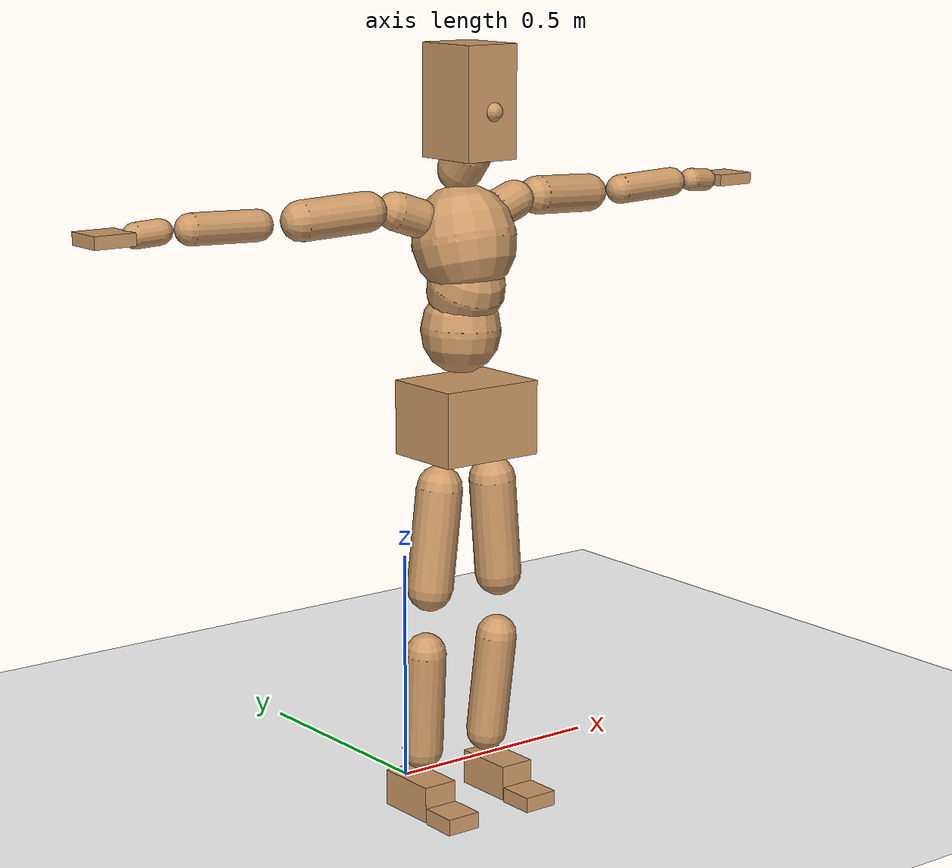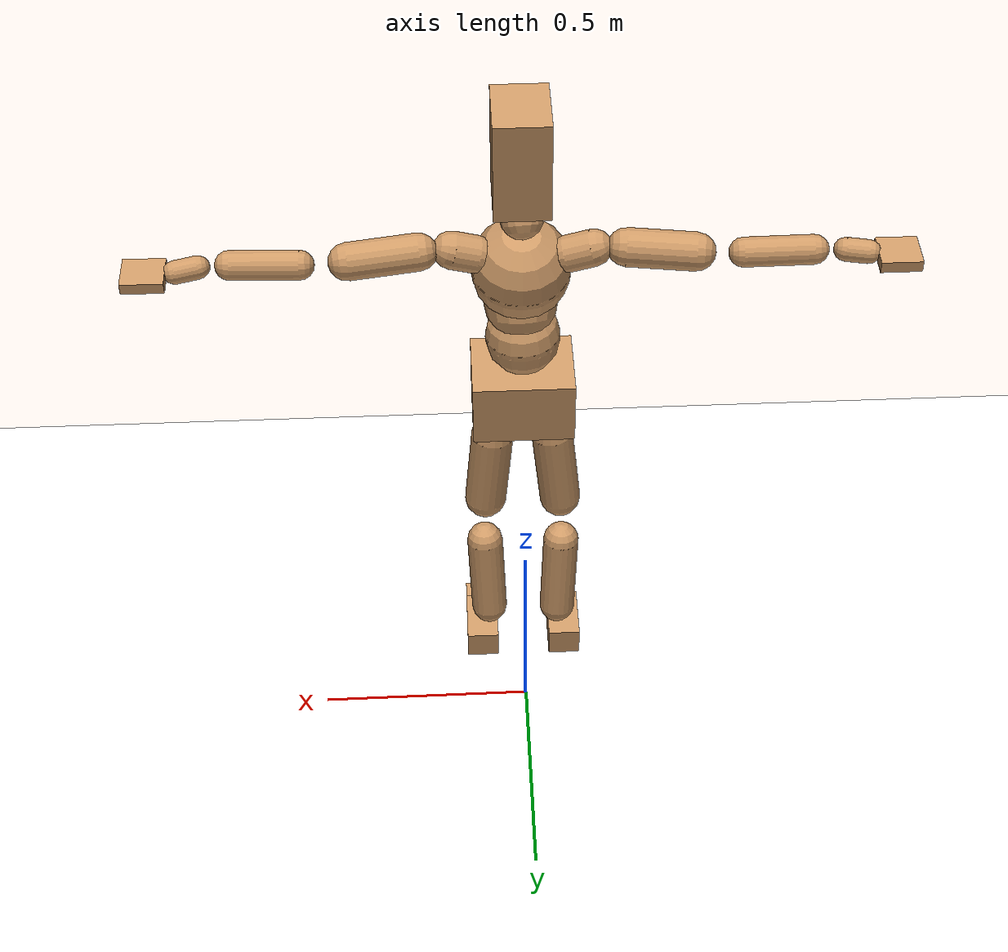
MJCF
<mujoco model="humanoid">
  <option integrator="implicitfast" />

  <visual>
    <global offwidth="1280" offheight="960" />
    <headlight active="1" ambient="0.34 0.34 0.34" diffuse="0.5 0.5 0.5" />
  </visual>

  <default>
    <joint damping="2" stiffness="2" armature="0.01" limited="true" solimplimit="0 .99 .01" />
    <geom condim="1" friction="0.7 0.005 0.0001" solimp=".99 .99 .003" solref="0.015 1" margin="0.001" rgba="0.8 0.6 .4 1" />
    <default class="smplcontact">
      <geom condim="3" friction="1. 0.005 0.0001" solref="0.015 1" solimp="0.98 0.98 0.001" priority="1" />
    </default>
    <default class="stiff_medium">
      <joint stiffness="10" />
    </default>
    <default class="stiff_medium_higher">
      <joint stiffness="50" />
    </default>
    <default class="stiff_high">
      <joint stiffness="100" />
    </default>
  </default>

  <asset>
    <texture type="skybox" builtin="gradient" rgb1="0.99 0.99 0.99" rgb2="0.608 0.828 0.892" width="100" />
    <texture builtin="flat" height="1278" mark="cross" markrgb="1 1 1" name="texgeom" random="0.01" rgb1="0.8 0.6 0.4" rgb2="0.8 0.6 0.4" type="cube" width="127" />
    <texture name="texplane" type="2d" builtin="checker" markrgb="1 1 1" rgb1="0.756 0.772 0.76" rgb2="0.6 0.6 0.6" width="100" height="100" />
    <material name="MatPlane" reflectance="0.5" texture="texplane" texrepeat="1 1" texuniform="true" />
    <material name="geom" texture="texgeom" texuniform="true" />
  </asset>

  <worldbody>
    <light name="tracking_light" pos="0 0 7" dir="0 0 -1" directional="true" cutoff="100" exponent="1" diffuse="1 1 1" specular="0.1 0.1 0.1" mode="trackcom" />
    <camera name="back" pos="0 3 2.4" xyaxes="-1 0 0 0 -1 2" mode="trackcom" />
    <camera name="side" pos="-3 0 2.4" xyaxes="0 -1 0 1 0 2" mode="trackcom" />
    <camera name="front_side" pos="-2.8 -2.8 0.8" xyaxes="0.5 -0.5 0 0.1 0.1 1" mode="trackcom" />
    <geom condim="3" name="floor" pos="0 0 0" rgba="1 1 1 1" size="100 100 .2" type="plane" material="MatPlane" />
    <body name="Pelvis" pos="-0.0018 -0.2233 0.859172" euler="90 0 0">
      <site name="Pelvis" size="0.01" />
      <freejoint name="Pelvis" />
      <geom type="box" pos="-0.0000 -0.0121 -0.0055" size="0.115452 0.077976 0.08964" quat="1.0000 0.0000 0.0000 0.0000" density="3165.830099" name="Pelvis" />
      <body name="L_Hip" pos="0.06394 -0.084088 -0.006256">
        <joint name="L_Hip_x" type="hinge" pos="0 0 0" axis="1 0 0" stiffness="5.182397083333333" range="-160.0 22.92" class="stiff_medium" damping="7.386066513989476" armature="0.0046785709968953735"/>
        <joint name="L_Hip_y" type="hinge" pos="0 0 0" axis="0 1 0" stiffness="5.170319895833333" range="-70.0 70.0" class="stiff_medium" damping="4.5595986159551645" armature="0.004021016099095626"/>
        <joint name="L_Hip_z" type="hinge" pos="0 0 0" axis="0 0 1" stiffness="5.169424895833333" range="-28.65 90.0" class="stiff_medium" damping="4.91838301884267" armature="0.00467953244461255"/>
        <geom type="capsule" density="2040.816327" fromto="0.006348 -0.069 -0.000828 0.025208 -0.276184 -0.003312" size="0.0492" name="L_Hip" />
        <body name="L_Knee" pos="0.031556 -0.345184 -0.00414">
          <joint name="L_Knee_x" type="hinge" pos="0 0 0" axis="1 0 0" range="-5.16 171.89" damping="3.85615330651496" armature="0.004552983833383062" stiffness="1.0206162916666668"/>
          <joint name="L_Knee_y" type="hinge" pos="0 0 0" axis="0 1 0" range="-4.58 6.88" damping="3.59046673980505" armature="0.0039125654569158504" stiffness="1.0296514166666666"/>
          <joint name="L_Knee_z" type="hinge" pos="0 0 0" axis="0 0 1" range="-6.88 4.58" damping="3.849807481012026" armature="0.004557491308619139" stiffness="1.0162538333333333"/>
          <geom type="capsule" density="1234.567901" fromto="-0.002484 -0.073232 -0.008004 -0.010028 -0.292928 -0.0322" size="0.04328" name="L_Knee" />
          <body name="L_Ankle" pos="-0.012512 -0.36616 -0.040204">
            <joint name="L_Ankle_x" type="hinge" pos="0 0 0" axis="1 0 0" range="-45.84 45.84" class="stiff_medium" damping="2.59523972314138" armature="0.003971866756167763" stiffness="4.7104"/>
            <joint name="L_Ankle_y" type="hinge" pos="0 0 0" axis="0 1 0" range="-74.48 22.92" class="stiff_medium" damping="1.2933890219489734" armature="0.003946008742117022" stiffness="4.7104"/>
            <joint name="L_Ankle_z" type="hinge" pos="0 0 0" axis="0 0 1" range="-4.58 4.58" class="stiff_medium" damping="2.530684060514597" armature="0.0037767268020070534" stiffness="4.7104"/>
            <geom type="box" pos="0.021436 -0.021988 0.022264" size="0.03864 0.03712 0.068" quat="1.0000 0.0000 0.0000 0.0000" density="449.071558" name="L_Ankle" class="smplcontact" />
            <body name="L_Toe" pos="0.024288 -0.051336 0.109756">
              <joint name="L_Toe_x" type="hinge" pos="0 0 0" axis="1 0 0" range="-91.67 22.92" armature="0.0036785704187839896" damping="0.8325271911629097" stiffness="0.9420799999999999"/>
              <joint name="L_Toe_y" type="hinge" pos="0 0 0" axis="0 1 0" range="-4.58 4.58" armature="0.003559879695189416" damping="0.8189861370309078" stiffness="0.9420799999999999"/>
              <joint name="L_Toe_z" type="hinge" pos="0 0 0" axis="0 0 1" range="-4.58 4.58" armature="0.003319893440580437" damping="0.7908988826015646" stiffness="0.9420799999999999"/>
              <geom type="box" pos="-0.00276 0.00506 0.022816" size="0.03824 0.016 0.03968" quat="1.0000 0.0000 0.0000 0.0000" density="423.206892" name="L_Toe" class="smplcontact" />
            </body>
          </body>
        </body>
      </body>
      <body name="R_Hip" pos="-0.062284 -0.08326 -0.003956">
        <joint name="R_Hip_x" type="hinge" pos="0 0 0" axis="1 0 0" stiffness="5.182397083333333" range="-160.0 22.92" class="stiff_medium" damping="7.386066513989476" armature="0.0046785709968953735"/>
        <joint name="R_Hip_y" type="hinge" pos="0 0 0" axis="0 1 0" stiffness="5.170319895833333" range="-70.0 70.0" class="stiff_medium" damping="4.5595986159551645" armature="0.004021016099095626"/>
        <joint name="R_Hip_z" type="hinge" pos="0 0 0" axis="0 0 1" stiffness="5.169424895833333" range="-90.0 28.65" class="stiff_medium" damping="4.91838301884267" armature="0.00467953244461255"/>
        <geom type="capsule" density="2040.816327" fromto="-0.007084 -0.07038 -0.001656 -0.028152 -0.281612 -0.006532" size="0.04848" name="R_Hip" />
        <body name="R_Knee" pos="-0.035236 -0.351992 -0.008188">
          <joint name="R_Knee_x" type="hinge" pos="0 0 0" axis="1 0 0" range="-5.16 171.89" damping="3.85615330651496" armature="0.004552983833383062" stiffness="1.0206162916666668"/>
          <joint name="R_Knee_y" type="hinge" pos="0 0 0" axis="0 1 0" range="-6.88 4.58" damping="3.59046673980505" armature="0.0039125654569158504" stiffness="1.0296514166666666"/>
          <joint name="R_Knee_z" type="hinge" pos="0 0 0" axis="0 0 1" range="-4.58 6.88" damping="3.849807481012026" armature="0.004557491308619139" stiffness="1.0162538333333333"/>
          <geom type="capsule" density="1234.567901" fromto="0.002944 -0.073324 -0.00782 0.011592 -0.293204 -0.031096" size="0.04328" name="R_Knee" />
          <body name="R_Ankle" pos="0.014536 -0.366528 -0.038916">
            <joint name="R_Ankle_x" type="hinge" pos="0 0 0" axis="1 0 0" range="-45.84 45.84" class="stiff_medium" damping="2.59523972314138" armature="0.003971866756167763" stiffness="4.7104"/>
            <joint name="R_Ankle_y" type="hinge" pos="0 0 0" axis="0 1 0" range="-22.92 74.48" class="stiff_medium" damping="1.2933890219489734" armature="0.003946008742117022" stiffness="4.7104"/>
            <joint name="R_Ankle_z" type="hinge" pos="0 0 0" axis="0 0 1" range="-4.58 4.58" class="stiff_medium" damping="2.530684060514597" armature="0.0037767268020070534" stiffness="4.7104"/>
            <geom type="box" pos="-0.019504 -0.016008 0.023552" size="0.03864 0.03824 0.0692" quat="1.0000 0.0000 0.0000 0.0000" density="434.700981" name="R_Ankle" class="smplcontact" />
            <body name="R_Toe" pos="-0.023368 -0.044252 0.113436">
              <joint name="R_Toe_x" type="hinge" pos="0 0 0" axis="1 0 0" range="-91.67 22.92" armature="0.0036785704187839896" damping="0.8325271911629097" stiffness="0.9420799999999999"/>
              <joint name="R_Toe_y" type="hinge" pos="0 0 0" axis="0 1 0" range="-4.58 4.58" armature="0.003559879695189416" damping="0.8189861370309078" stiffness="0.9420799999999999"/>
              <joint name="R_Toe_z" type="hinge" pos="0 0 0" axis="0 0 1" range="-4.58 4.58" armature="0.003319893440580437" damping="0.7908988826015646" stiffness="0.9420799999999999"/>
              <geom type="box" pos="0.003864 0.00414 0.020884" size="0.03832 0.01728 0.03944" quat="1.0000 0.0000 0.0000 0.0000" density="407.384095" name="R_Toe" class="smplcontact" />
            </body>
          </body>
        </body>
      </body>
      <body name="Torso" pos="-0.002375 0.10355 -0.025365">
        <joint name="Torso_x" type="hinge" pos="0 0 0" axis="1 0 0" range="-25.78 57.3" class="stiff_medium" damping="13.298534955218738" armature="0.008606937621747204" stiffness="9.13222125"/>
        <joint name="Torso_y" type="hinge" pos="0 0 0" axis="0 1 0" range="-57.3 57.3" class="stiff_high" damping="14.216075993966706" armature="0.00546649931202179" stiffness="92.42515416666667"/>
        <joint name="Torso_z" type="hinge" pos="0 0 0" axis="0 0 1" range="-34.38 34.38" class="stiff_high" damping="16.757867129717987" armature="0.007467817198768142" stiffness="94.01211333333333"/>
        <geom type="capsule" density="2040.816327" fromto="0.002375 0.05776 0.000475 0.00285 0.070585 0.00057" size="0.083052" name="Torso" />
        <body name="Spine" pos="0.005225 0.12844 0.001045">
          <joint name="Spine_x" type="hinge" pos="0 0 0" axis="1 0 0" stiffness="8.87020125" range="-25.78 57.3" class="stiff_medium" damping="13.192331693568567" armature="0.008720213798888786"/>
          <joint name="Spine_y" type="hinge" pos="0 0 0" axis="0 1 0" stiffness="9.04484434782609" range="-57.3 57.3" class="stiff_high" damping="5.594114018515697" armature="0.005406068648184387"/>
          <joint name="Spine_z" type="hinge" pos="0 0 0" axis="0 0 1" stiffness="17.84916772727273" range="-34.38 34.38" class="stiff_high" damping="9.34711545464215" armature="0.006798369215099382"/>
          <geom type="capsule" density="2040.816327" fromto="0.000665 0.02261 0.01083 0.00076 0.027645 0.0133" size="0.08154" name="Spine" />
          <body name="Chest" pos="0.001425 0.050255 0.02413">
            <joint name="Chest_x" type="hinge" pos="0 0 0" axis="1 0 0" stiffness="8.730364347826088" range="-25.78 57.3" class="stiff_medium" damping="13.147345500606383" armature="0.008799566245688816"/>
            <joint name="Chest_y" type="hinge" pos="0 0 0" axis="0 1 0" stiffness="7.724551428571428" range="-57.3 57.3" class="stiff_high" damping="5.145494654466398" armature="0.005355512283618849"/>
            <joint name="Chest_z" type="hinge" pos="0 0 0" axis="0 0 1" stiffness="18.038889302325586" range="-34.38 34.38" class="stiff_high" damping="9.188010114789494" armature="0.006499809665433243"/>
            <geom type="capsule" density="2040.816327" fromto="-0.000855 0.06479 -0.016435 -0.00095 0.079135 -0.02014" size="0.108216" name="Chest" />
            <body name="Neck" pos="-0.00266 0.203205 -0.040755">
              <joint name="Neck_x" type="hinge" pos="0 0 0" axis="1 0 0" range="-28.65 57.3" class="stiff_medium_higher" damping="10.060465323972476" armature="0.01002613465851857" stiffness="50.47456770833333"/>
              <joint name="Neck_y" type="hinge" pos="0 0 0" axis="0 1 0" range="-40.11 40.11" class="stiff_medium_higher" damping="10.099809599621976" armature="0.010122986011261015" stiffness="50.38343125"/>
              <joint name="Neck_z" type="hinge" pos="0 0 0" axis="0 0 1" range="-40.11 40.11" class="stiff_medium_higher" damping="10.032620834510999" armature="0.010023718949626184" stiffness="50.20765312499999"/>
              <geom type="capsule" density="1000" fromto="0.00095 0.01235 0.009785 0.003895 0.0494 0.039045" size="0.047088" name="Neck" />
              <body name="Head" pos="0.0052 0.065 0.0513">
                <joint name="Head_x" type="hinge" pos="0 0 0" axis="1 0 0" range="-28.65 57.3" class="stiff_medium_higher" damping="2.0000000000000004" armature="0.010000000000000005" stiffness="50.0"/>
                <joint name="Head_y" type="hinge" pos="0 0 0" axis="0 1 0" range="-40.11 40.11" class="stiff_medium_higher" damping="2.0" armature="0.01" stiffness="50.0"/>
                <joint name="Head_z" type="hinge" pos="0 0 0" axis="0 0 1" range="-40.11 40.11" class="stiff_medium_higher" damping="2.000000000000002" armature="0.010000000000000024" stiffness="50.0"/>
                <geom type="box" pos="-0.0042 0.0876 -0.0116" size="0.0606 0.1154 0.076" quat="1.0000 0.0000 0.0000 0.0000" density="1018.069894" name="Head" />
                <geom type="capsule" name="nose" size="0.02 0.01" pos="0 0.07 0.05" quat="1 0 0 0" mass="0" contype="0" conaffinity="0" />
              </body>
            </body>
            <body name="L_Thorax" pos="0.076436 0.118049 -0.033077">
              <joint name="L_Thorax_x" type="hinge" pos="0 0 0" axis="1 0 0" range="-10.89 4.58" class="stiff_medium_higher" damping="9.528176114974096" armature="0.004292896531686241" stiffness="26.434989583333333"/>
              <joint name="L_Thorax_y" type="hinge" pos="0 0 0" axis="0 1 0" range="-28.65 17.19" class="stiff_medium_higher" damping="10.372795385369907" armature="0.0050597258231851105" stiffness="26.581204166666666"/>
              <joint name="L_Thorax_z" type="hinge" pos="0 0 0" axis="0 0 1" range="-31.51 40.11" class="stiff_medium_higher" damping="10.372562549715312" armature="0.005060426066249457" stiffness="26.576332812500002"/>
              <geom type="capsule" density="1000" fromto="0.017654 0.005917 -0.001746 0.070616 0.023668 -0.006887" size="0.040638" name="L_Thorax" />
              <body name="L_Shoulder" pos="0.08827 0.029585 -0.008633">
                <joint name="L_Shoulder_x" type="hinge" pos="0 0 0" axis="1 0 0" range="-97.4 97.4" class="stiff_medium" damping="2.7463420293417546" armature="0.003978841258778426" stiffness="5.2656275"/>
                <joint name="L_Shoulder_y" type="hinge" pos="0 0 0" axis="0 1 0" range="-108.86 80.21" class="stiff_medium" damping="3.09853695816924" armature="0.005026750402184501" stiffness="5.305466041666667"/>
                <joint name="L_Shoulder_z" type="hinge" pos="0 0 0" axis="0 0 1" range="-97.4 85.94" class="stiff_medium" damping="3.098184741728115" armature="0.005027602915468978" stiffness="5.303360520833333"/>
                <geom type="capsule" density="1000" fromto="0.050343 -0.002522 -0.005335 0.201469 -0.009894 -0.02134" size="0.040326" name="L_Shoulder" />
                <body name="L_Elbow" pos="0.251812 -0.012416 -0.026675">
                  <joint name="L_Elbow_x" type="hinge" pos="0 0 0" axis="1 0 0" range="-17.19 4.58" damping="2.1305107643619383" armature="0.003501933680309377" stiffness="1.0369302291666669"/>
                  <joint name="L_Elbow_y" type="hinge" pos="0 0 0" axis="0 1 0" range="-180.0 17.19" damping="2.512070070642717" armature="0.004867199218354468" stiffness="1.0372283125"/>
                  <joint name="L_Elbow_z" type="hinge" pos="0 0 0" axis="0 0 1" range="-100.84 4.58" damping="2.5125555892764098" armature="0.004871663663159085" stiffness="1.0366783958333334"/>
                  <geom type="capsule" density="1000" fromto="0.048306 0.001746 -0.000194 0.193418 0.006984 -0.000873" size="0.03159" name="L_Elbow" />
                  <body name="L_Wrist" pos="0.241724 0.00873 -0.001164">
                    <joint name="L_Wrist_x" type="hinge" pos="0 0 0" axis="1 0 0" range="-180.0 22.92" armature="0.003412862797642098" damping="0.8100182005784584" stiffness="0.9612596874999999"/>
                    <joint name="L_Wrist_y" type="hinge" pos="0 0 0" axis="0 1 0" range="-17.19 17.19" armature="0.004375166376774269" damping="0.9199412954542958" stiffness="0.9671540625000001"/>
                    <joint name="L_Wrist_z" type="hinge" pos="0 0 0" axis="0 0 1" range="-22.92 22.92" armature="0.00442765677150529" damping="0.9242699290125436" stiffness="0.9647031666666666"/>
                    <geom type="capsule" density="1000" fromto="0.016296 -0.001552 -0.00291 0.065184 -0.006305 -0.01164" size="0.024804" name="L_Wrist" class="smplcontact" />
                    <body name="L_Hand" pos="0.08148 -0.007954 -0.014453">
                      <joint name="L_Hand_x" type="hinge" pos="0 0 0" axis="1 0 0" range="-17.19 17.19" armature="0.002955916776619425" damping="0.737740559012332" stiffness="0.92063"/>
                      <joint name="L_Hand_y" type="hinge" pos="0 0 0" axis="0 1 0" range="-51.57 51.57" armature="0.0037185189599104095" damping="0.8274515224546173" stiffness="0.92063"/>
                      <joint name="L_Hand_z" type="hinge" pos="0 0 0" axis="0 0 1" range="-91.67 91.67" armature="0.003921800991362345" damping="0.8497679267515238" stiffness="0.92063"/>
                      <geom type="box" pos="0.047821 0.00097 -0.005626" size="0.04563 0.012324 0.041964" quat="1.0000 0.0000 0.0000 0.0000" density="400.552564" name="L_Hand" class="smplcontact" />
                    </body>
                  </body>
                </body>
              </body>
            </body>
            <body name="R_Thorax" pos="-0.079346 0.115236 -0.037442">
              <joint name="R_Thorax_x" type="hinge" pos="0 0 0" axis="1 0 0" range="-10.89 4.58" class="stiff_medium_higher" damping="9.528176114974096" armature="0.004292896531686241" stiffness="26.434989583333333"/>
              <joint name="R_Thorax_y" type="hinge" pos="0 0 0" axis="0 1 0" range="-17.19 28.65" class="stiff_medium_higher" damping="10.372795385369907" armature="0.0050597258231851105" stiffness="26.581204166666666"/>
              <joint name="R_Thorax_z" type="hinge" pos="0 0 0" axis="0 0 1" range="-40.11 31.51" class="stiff_medium_higher" damping="10.372562549715312" armature="0.005060426066249457" stiffness="26.576332812500002"/>
              <geom type="capsule" density="1000" fromto="-0.018624 0.006305 -0.001746 -0.074496 0.02522 -0.007081" size="0.039858" name="R_Thorax" />
              <body name="R_Shoulder" pos="-0.09312 0.031622 -0.008827">
                <joint name="R_Shoulder_x" type="hinge" pos="0 0 0" axis="1 0 0" range="-97.4 97.4" class="stiff_medium" damping="2.7463420293417546" armature="0.003978841258778426" stiffness="5.2656275"/>
                <joint name="R_Shoulder_y" type="hinge" pos="0 0 0" axis="0 1 0" range="-80.21 108.86" class="stiff_medium" damping="3.09853695816924" armature="0.005026750402184501" stiffness="5.305466041666667"/>
                <joint name="R_Shoulder_z" type="hinge" pos="0 0 0" axis="0 0 1" range="-85.94 97.4" class="stiff_medium" damping="3.098184741728115" armature="0.005027602915468978" stiffness="5.303360520833333"/>
                <geom type="capsule" density="1000" fromto="-0.049179 -0.002619 -0.004171 -0.19691 -0.010379 -0.016587" size="0.041418" name="R_Shoulder" />
                <body name="R_Elbow" pos="-0.246089 -0.012901 -0.020758">
                  <joint name="R_Elbow_x" type="hinge" pos="0 0 0" axis="1 0 0" range="-17.19 4.58" damping="2.1305107643619383" armature="0.003501933680309377" stiffness="1.0369302291666669"/>
                  <joint name="R_Elbow_y" type="hinge" pos="0 0 0" axis="0 1 0" range="-17.19 180.0" damping="2.512070070642717" armature="0.004867199218354468" stiffness="1.0372283125"/>
                  <joint name="R_Elbow_z" type="hinge" pos="0 0 0" axis="0 0 1" range="-4.58 100.84" damping="2.5125555892764098" armature="0.004871663663159085" stiffness="1.0366783958333334"/>
                  <geom type="capsule" density="1000" fromto="-0.049567 0.001552 -0.001067 -0.198074 0.006014 -0.004268" size="0.031824" name="R_Elbow" />
                  <body name="R_Wrist" pos="-0.247641 0.007566 -0.005432">
                    <joint name="R_Wrist_x" type="hinge" pos="0 0 0" axis="1 0 0" range="-180.0 22.92" armature="0.003412862797642098" damping="0.8100182005784584" stiffness="0.9612596874999999"/>
                    <joint name="R_Wrist_y" type="hinge" pos="0 0 0" axis="0 1 0" range="-17.19 17.19" armature="0.004375166376774269" damping="0.9199412954542958" stiffness="0.9671540625000001"/>
                    <joint name="R_Wrist_z" type="hinge" pos="0 0 0" axis="0 0 1" range="-22.92 22.92" armature="0.00442765677150529" damping="0.9242699290125436" stiffness="0.9647031666666666"/>
                    <geom type="capsule" density="1000" fromto="-0.016393 -0.001164 -0.002037 -0.065669 -0.004753 -0.008051" size="0.025428" name="R_Wrist" class="smplcontact" />
                    <body name="R_Hand" pos="-0.082062 -0.005917 -0.009991">
                      <joint name="R_Hand_x" type="hinge" pos="0 0 0" axis="1 0 0" range="-17.19 17.19" armature="0.002955916776619425" damping="0.737740559012332" stiffness="0.92063"/>
                      <joint name="R_Hand_y" type="hinge" pos="0 0 0" axis="0 1 0" range="-51.57 51.57" armature="0.0037185189599104095" damping="0.8274515224546173" stiffness="0.92063"/>
                      <joint name="R_Hand_z" type="hinge" pos="0 0 0" axis="0 0 1" range="-91.67 91.67" armature="0.003921800991362345" damping="0.8497679267515238" stiffness="0.92063"/>
                      <geom type="box" pos="-0.044814 -0.000873 -0.007663" size="0.044382 0.012792 0.042588" quat="1.0000 0.0000 0.0000 0.0000" density="403.679611" name="R_Hand" class="smplcontact" />
                    </body>
                  </body>
                </body>
              </body>
            </body>
          </body>
        </body>
      </body>
    </body>
  </worldbody>
  <actuator>
    <general name="L_Hip_x" joint="L_Hip_x" biastype="affine" gainprm="148.90584861319437" biasprm="-111.58984106656835 -93.2831475 -0.9848088685319302" ctrllimited="true" ctrlrange="-1 1" forcerange="-186.566295 186.566295" />
    <general name="L_Hip_y" joint="L_Hip_y" biastype="affine" gainprm="113.701273010214" biasprm="0.0 -93.06575812499999 -0.9119197231910329" ctrllimited="true" ctrlrange="-1 1" forcerange="-186.13151624999998 186.13151624999998" />
    <general name="L_Hip_z" joint="L_Hip_z" biastype="affine" gainprm="96.34514831507279" biasprm="49.81689716923485 -93.049648125 -0.9836766037685339" ctrllimited="true" ctrlrange="-1 1" forcerange="-186.09929625 186.09929625" />
    <general name="L_Knee_x" joint="L_Knee_x" biastype="affine" gainprm="141.9215380065575" biasprm="133.6491275449496 -91.85546625 -0.96403832662874" ctrllimited="true" ctrlrange="-1 1" forcerange="-183.7109325 183.7109325" />
    <general name="L_Knee_y" joint="L_Knee_y" biastype="affine" gainprm="9.267545360016594" biasprm="1.8599785626560357 -92.6686275 -0.8976166849512625" ctrllimited="true" ctrlrange="-1 1" forcerange="-185.337255 185.337255" />
    <general name="L_Knee_z" joint="L_Knee_z" biastype="affine" gainprm="9.146958228054764" biasprm="-1.8357769567649178 -91.462845 -0.9624518702530065" ctrllimited="true" ctrlrange="-1 1" forcerange="-182.92569 182.92569" />
    <general name="L_Ankle_x" joint="L_Ankle_x" biastype="affine" gainprm="33.91737821729578" biasprm="0.0 -42.3936 -0.8650799077137934" ctrllimited="true" ctrlrange="-1 1" forcerange="-84.7872 84.7872" />
    <general name="L_Ankle_y" joint="L_Ankle_y" biastype="affine" gainprm="36.0335148163679" biasprm="-19.07482570772001 -42.3936 -0.8622593479659822" ctrllimited="true" ctrlrange="-1 1" forcerange="-84.7872 84.7872" />
    <general name="L_Ankle_z" joint="L_Ankle_z" biastype="affine" gainprm="3.388778190122483" biasprm="0.0 -42.3936 -0.8435613535048656" ctrllimited="true" ctrlrange="-1 1" forcerange="-84.7872 84.7872" />
    <general name="L_Toe_x" joint="L_Toe_x" biastype="affine" gainprm="33.91441858568868" biasprm="-20.34746729877037 -33.91488 -0.3330108764651639" ctrllimited="true" ctrlrange="-1 1" forcerange="-67.82976 67.82976" />
    <general name="L_Toe_y" joint="L_Toe_y" biastype="affine" gainprm="2.7110225520979867" biasprm="0.0 -33.91488 -0.32759445481236316" ctrllimited="true" ctrlrange="-1 1" forcerange="-67.82976 67.82976" />
    <general name="L_Toe_z" joint="L_Toe_z" biastype="affine" gainprm="2.7110225520979867" biasprm="0.0 -33.91488 -0.31635955304062585" ctrllimited="true" ctrlrange="-1 1" forcerange="-67.82976 67.82976" />
    <general name="R_Hip_x" joint="R_Hip_x" biastype="affine" gainprm="148.90584861319437" biasprm="-111.58984106656835 -93.2831475 -0.9848088685319302" ctrllimited="true" ctrlrange="-1 1" forcerange="-186.566295 186.566295" />
    <general name="R_Hip_y" joint="R_Hip_y" biastype="affine" gainprm="113.701273010214" biasprm="0.0 -93.06575812499999 -0.9119197231910329" ctrllimited="true" ctrlrange="-1 1" forcerange="-186.13151624999998 186.13151624999998" />
    <general name="R_Hip_z" joint="R_Hip_z" biastype="affine" gainprm="96.34514831507279" biasprm="-49.81689716923485 -93.049648125 -0.9836766037685339" ctrllimited="true" ctrlrange="-1 1" forcerange="-186.09929625 186.09929625" />
    <general name="R_Knee_x" joint="R_Knee_x" biastype="affine" gainprm="141.9215380065575" biasprm="133.6491275449496 -91.85546625 -0.96403832662874" ctrllimited="true" ctrlrange="-1 1" forcerange="-183.7109325 183.7109325" />
    <general name="R_Knee_y" joint="R_Knee_y" biastype="affine" gainprm="9.267545360016594" biasprm="-1.8599785626560357 -92.6686275 -0.8976166849512625" ctrllimited="true" ctrlrange="-1 1" forcerange="-185.337255 185.337255" />
    <general name="R_Knee_z" joint="R_Knee_z" biastype="affine" gainprm="9.146958228054764" biasprm="1.8357769567649178 -91.462845 -0.9624518702530065" ctrllimited="true" ctrlrange="-1 1" forcerange="-182.92569 182.92569" />
    <general name="R_Ankle_x" joint="R_Ankle_x" biastype="affine" gainprm="33.91737821729578" biasprm="0.0 -42.3936 -0.8650799077137934" ctrllimited="true" ctrlrange="-1 1" forcerange="-84.7872 84.7872" />
    <general name="R_Ankle_y" joint="R_Ankle_y" biastype="affine" gainprm="36.0335148163679" biasprm="19.07482570772001 -42.3936 -0.8622593479659822" ctrllimited="true" ctrlrange="-1 1" forcerange="-84.7872 84.7872" />
    <general name="R_Ankle_z" joint="R_Ankle_z" biastype="affine" gainprm="3.388778190122483" biasprm="0.0 -42.3936 -0.8435613535048656" ctrllimited="true" ctrlrange="-1 1" forcerange="-84.7872 84.7872" />
    <general name="R_Toe_x" joint="R_Toe_x" biastype="affine" gainprm="33.91441858568868" biasprm="-20.34746729877037 -33.91488 -0.3330108764651639" ctrllimited="true" ctrlrange="-1 1" forcerange="-67.82976 67.82976" />
    <general name="R_Toe_y" joint="R_Toe_y" biastype="affine" gainprm="2.7110225520979867" biasprm="0.0 -33.91488 -0.32759445481236316" ctrllimited="true" ctrlrange="-1 1" forcerange="-67.82976 67.82976" />
    <general name="R_Toe_z" joint="R_Toe_z" biastype="affine" gainprm="2.7110225520979867" biasprm="0.0 -33.91488 -0.31635955304062585" ctrllimited="true" ctrlrange="-1 1" forcerange="-67.82976 67.82976" />
    <general name="Torso_x" joint="Torso_x" biastype="affine" gainprm="158.90279135343962" biasprm="60.286663257828785 -219.17331 -3.5462759880583303" ctrllimited="true" ctrlrange="-1 1" forcerange="-328.759965 328.759965" />
    <general name="Torso_y" joint="Torso_y" biastype="affine" gainprm="221.8367095973947" biasprm="0.0 -221.82037 -2.843215198793341" ctrllimited="true" ctrlrange="-1 1" forcerange="-332.730555 332.730555" />
    <general name="Torso_z" joint="Torso_z" biastype="affine" gainprm="135.38741529101316" biasprm="0.0 -225.62907199999998 -3.351573425943597" ctrllimited="true" ctrlrange="-1 1" forcerange="-338.443608 338.443608" />
    <general name="Spine_x" joint="Spine_x" biastype="affine" gainprm="154.34358190695053" biasprm="58.55692948612277 -212.88483 -3.5179551182849513" ctrllimited="true" ctrlrange="-1 1" forcerange="-319.327245 319.327245" />
    <general name="Spine_y" joint="Spine_y" biastype="affine" gainprm="217.09225448779114" biasprm="0.0 -217.07626434782614 -2.7970570092578484" ctrllimited="true" ctrlrange="-1 1" forcerange="-325.6143965217392 325.6143965217392" />
    <general name="Spine_z" joint="Spine_z" biastype="affine" gainprm="128.52347415715414" biasprm="0.0 -214.19001272727274 -3.1157051515473837" ctrllimited="true" ctrlrange="-1 1" forcerange="-321.2850190909091 321.2850190909091" />
    <general name="Chest_x" joint="Chest_x" biastype="affine" gainprm="151.9103870158771" biasprm="57.63379151107902 -209.52874434782612 -3.505958800161702" ctrllimited="true" ctrlrange="-1 1" forcerange="-314.2931165217392 314.2931165217392" />
    <general name="Chest_y" joint="Chest_y" biastype="affine" gainprm="185.40289031491275" biasprm="0.0 -185.38923428571428 -2.572747327233199" ctrllimited="true" ctrlrange="-1 1" forcerange="-278.0838514285714 278.0838514285714" />
    <general name="Chest_z" joint="Chest_z" biastype="affine" gainprm="129.88957011865398" biasprm="0.0 -216.466671627907 -3.0626700382631644" ctrllimited="true" ctrlrange="-1 1" forcerange="-324.7000074418605 324.7000074418605" />
    <general name="Neck_x" joint="Neck_x" biastype="affine" gainprm="27.25827429705618" biasprm="9.08609143235206 -36.341688749999996 -0.8048372259177982" ctrllimited="true" ctrlrange="-1 1" forcerange="-72.68337749999999 72.68337749999999" />
    <general name="Neck_y" joint="Neck_y" biastype="affine" gainprm="25.395119852113588" biasprm="0.0 -36.2760705 -0.8079847679697582" ctrllimited="true" ctrlrange="-1 1" forcerange="-72.552141 72.552141" />
    <general name="Neck_z" joint="Neck_z" biastype="affine" gainprm="25.30652115129059" biasprm="0.0 -36.14951025 -0.80260966676088" ctrllimited="true" ctrlrange="-1 1" forcerange="-72.2990205 72.2990205" />
    <general name="Head_x" joint="Head_x" biastype="affine" gainprm="18.001325905069514" biasprm="6.000441968356505 -24.0 -0.8000000000000003" ctrllimited="true" ctrlrange="-1 1" forcerange="-48.0 48.0" />
    <general name="Head_y" joint="Head_y" biastype="affine" gainprm="16.801237511398213" biasprm="0.0 -24.0 -0.8" ctrllimited="true" ctrlrange="-1 1" forcerange="-48.0 48.0" />
    <general name="Head_z" joint="Head_z" biastype="affine" gainprm="16.801237511398213" biasprm="0.0 -24.0 -0.8000000000000009" ctrllimited="true" ctrlrange="-1 1" forcerange="-48.0 48.0" />
    <general name="L_Thorax_x" joint="L_Thorax_x" biastype="affine" gainprm="8.565013877033469" biasprm="-3.4935512323258697 -63.443975 -0.7622540891979277" ctrllimited="true" ctrlrange="-1 1" forcerange="-126.88795 126.88795" />
    <general name="L_Thorax_y" joint="L_Thorax_y" biastype="affine" gainprm="25.519835688179114" biasprm="-6.3799589220447785 -63.79489 -0.8298236308295925" ctrllimited="true" ctrlrange="-1 1" forcerange="-127.58978 127.58978" />
    <general name="L_Thorax_z" joint="L_Thorax_z" biastype="affine" gainprm="39.86465262621967" biasprm="4.786875350258156 -63.78319875000001 -0.829805003977225" ctrllimited="true" ctrlrange="-1 1" forcerange="-127.56639750000002 127.56639750000002" />
    <general name="L_Shoulder_x" joint="L_Shoulder_x" biastype="affine" gainprm="42.966274125616906" biasprm="0.0 -25.275011999999997 -0.7323578744911345" ctrllimited="true" ctrlrange="-1 1" forcerange="-50.55002399999999 50.55002399999999" />
    <general name="L_Shoulder_y" joint="L_Shoulder_y" biastype="affine" gainprm="42.017941552663714" biasprm="-6.367028219621385 -25.466237 -0.826276522178464" ctrllimited="true" ctrlrange="-1 1" forcerange="-50.932474 50.932474" />
    <general name="L_Shoulder_z" joint="L_Shoulder_z" biastype="affine" gainprm="40.72836608152226" biasprm="-2.5458005634026732 -25.4561305 -0.8261825977941641" ctrllimited="true" ctrlrange="-1 1" forcerange="-50.912261 50.912261" />
    <general name="L_Elbow_x" joint="L_Elbow_x" biastype="affine" gainprm="7.09182217354199" biasprm="-4.107849224086565 -37.32948825000001 -0.34088172229791014" ctrllimited="true" ctrlrange="-1 1" forcerange="-74.65897650000002 74.65897650000002" />
    <general name="L_Elbow_y" joint="L_Elbow_y" biastype="affine" gainprm="64.25532470699942" biasprm="-53.05243377223275 -37.34021925 -0.4019312113028347" ctrllimited="true" ctrlrange="-1 1" forcerange="-74.6804385 74.6804385" />
    <general name="L_Elbow_z" joint="L_Elbow_z" biastype="affine" gainprm="34.333409432859526" biasprm="-31.350161183903037 -37.32042225000001 -0.40200889428422554" ctrllimited="true" ctrlrange="-1 1" forcerange="-74.64084450000001 74.64084450000001" />
    <general name="L_Wrist_x" joint="L_Wrist_x" biastype="affine" gainprm="10.213255711598912" biasprm="-7.906062523053208 -5.767558124999999 -0.32400728023138337" ctrllimited="true" ctrlrange="-1 1" forcerange="-11.535116249999998 11.535116249999998" />
    <general name="L_Wrist_y" joint="L_Wrist_y" biastype="affine" gainprm="1.7410055479474476" biasprm="0.0 -5.802924375000001 -0.36797651818171834" ctrllimited="true" ctrlrange="-1 1" forcerange="-11.605848750000002 11.605848750000002" />
    <general name="L_Wrist_z" joint="L_Wrist_z" biastype="affine" gainprm="2.3154581473092346" biasprm="0.0 -5.788219 -0.36970797160501745" ctrllimited="true" ctrlrange="-1 1" forcerange="-11.576438 11.576438" />
    <general name="L_Hand_x" joint="L_Hand_x" biastype="affine" gainprm="1.657256066798415" biasprm="0.0 -5.5237799999999995 -0.2950962236049328" ctrllimited="true" ctrlrange="-1 1" forcerange="-11.047559999999999 11.047559999999999" />
    <general name="L_Hand_y" joint="L_Hand_y" biastype="affine" gainprm="4.9717682003952435" biasprm="0.0 -5.5237799999999995 -0.33098060898184695" ctrllimited="true" ctrlrange="-1 1" forcerange="-11.047559999999999 11.047559999999999" />
    <general name="L_Hand_z" joint="L_Hand_z" biastype="affine" gainprm="8.837734941443319" biasprm="0.0 -5.5237799999999995 -0.33990717070060955" ctrllimited="true" ctrlrange="-1 1" forcerange="-11.047559999999999 11.047559999999999" />
    <general name="R_Thorax_x" joint="R_Thorax_x" biastype="affine" gainprm="8.565013877033469" biasprm="-3.4935512323258697 -63.443975 -0.7622540891979277" ctrllimited="true" ctrlrange="-1 1" forcerange="-126.88795 126.88795" />
    <general name="R_Thorax_y" joint="R_Thorax_y" biastype="affine" gainprm="25.519835688179114" biasprm="6.379958922044774 -63.79489 -0.8298236308295925" ctrllimited="true" ctrlrange="-1 1" forcerange="-127.58978 127.58978" />
    <general name="R_Thorax_z" joint="R_Thorax_z" biastype="affine" gainprm="39.86465262621967" biasprm="-4.786875350258156 -63.78319875000001 -0.829805003977225" ctrllimited="true" ctrlrange="-1 1" forcerange="-127.56639750000002 127.56639750000002" />
    <general name="R_Shoulder_x" joint="R_Shoulder_x" biastype="affine" gainprm="42.966274125616906" biasprm="0.0 -25.275011999999997 -0.7323578744911345" ctrllimited="true" ctrlrange="-1 1" forcerange="-50.55002399999999 50.55002399999999" />
    <general name="R_Shoulder_y" joint="R_Shoulder_y" biastype="affine" gainprm="42.017941552663714" biasprm="6.367028219621385 -25.466237 -0.826276522178464" ctrllimited="true" ctrlrange="-1 1" forcerange="-50.932474 50.932474" />
    <general name="R_Shoulder_z" joint="R_Shoulder_z" biastype="affine" gainprm="40.72836608152226" biasprm="2.5458005634026675 -25.4561305 -0.8261825977941641" ctrllimited="true" ctrlrange="-1 1" forcerange="-50.912261 50.912261" />
    <general name="R_Elbow_x" joint="R_Elbow_x" biastype="affine" gainprm="7.09182217354199" biasprm="-4.107849224086565 -37.32948825000001 -0.34088172229791014" ctrllimited="true" ctrlrange="-1 1" forcerange="-74.65897650000002 74.65897650000002" />
    <general name="R_Elbow_y" joint="R_Elbow_y" biastype="affine" gainprm="64.25532470699942" biasprm="53.05243377223275 -37.34021925 -0.4019312113028347" ctrllimited="true" ctrlrange="-1 1" forcerange="-74.6804385 74.6804385" />
    <general name="R_Elbow_z" joint="R_Elbow_z" biastype="affine" gainprm="34.333409432859526" biasprm="31.350161183903033 -37.32042225000001 -0.40200889428422554" ctrllimited="true" ctrlrange="-1 1" forcerange="-74.64084450000001 74.64084450000001" />
    <general name="R_Wrist_x" joint="R_Wrist_x" biastype="affine" gainprm="10.213255711598912" biasprm="-7.906062523053208 -5.767558124999999 -0.32400728023138337" ctrllimited="true" ctrlrange="-1 1" forcerange="-11.535116249999998 11.535116249999998" />
    <general name="R_Wrist_y" joint="R_Wrist_y" biastype="affine" gainprm="1.7410055479474476" biasprm="0.0 -5.802924375000001 -0.36797651818171834" ctrllimited="true" ctrlrange="-1 1" forcerange="-11.605848750000002 11.605848750000002" />
    <general name="R_Wrist_z" joint="R_Wrist_z" biastype="affine" gainprm="2.3154581473092346" biasprm="0.0 -5.788219 -0.36970797160501745" ctrllimited="true" ctrlrange="-1 1" forcerange="-11.576438 11.576438" />
    <general name="R_Hand_x" joint="R_Hand_x" biastype="affine" gainprm="1.657256066798415" biasprm="0.0 -5.5237799999999995 -0.2950962236049328" ctrllimited="true" ctrlrange="-1 1" forcerange="-11.047559999999999 11.047559999999999" />
    <general name="R_Hand_y" joint="R_Hand_y" biastype="affine" gainprm="4.9717682003952435" biasprm="0.0 -5.5237799999999995 -0.33098060898184695" ctrllimited="true" ctrlrange="-1 1" forcerange="-11.047559999999999 11.047559999999999" />
    <general name="R_Hand_z" joint="R_Hand_z" biastype="affine" gainprm="8.837734941443319" biasprm="0.0 -5.5237799999999995 -0.33990717070060955" ctrllimited="true" ctrlrange="-1 1" forcerange="-11.047559999999999 11.047559999999999" />
  </actuator>
  <contact>
    <exclude body1="Torso" body2="Chest" />
    <exclude body1="Head" body2="Chest" />
    <exclude body1="R_Knee" body2="R_Toe" />
    <exclude body1="R_Knee" body2="L_Ankle" />
    <exclude body1="R_Knee" body2="L_Toe" />
    <exclude body1="L_Knee" body2="L_Toe" />
    <exclude body1="L_Knee" body2="R_Ankle" />
    <exclude body1="L_Knee" body2="R_Toe" />
    <exclude body1="L_Shoulder" body2="Chest" />
    <exclude body1="R_Shoulder" body2="Chest" />
  </contact>
  <sensor>
    <framelinvel name="sensor_Pelvis_framelinvel" objtype="xbody" objname="Pelvis" />
    <framelinvel name="sensor_L_Hip_framelinvel" objtype="xbody" objname="L_Hip" />
    <framelinvel name="sensor_L_Knee_framelinvel" objtype="xbody" objname="L_Knee" />
    <framelinvel name="sensor_L_Ankle_framelinvel" objtype="xbody" objname="L_Ankle" />
    <framelinvel name="sensor_L_Toe_framelinvel" objtype="xbody" objname="L_Toe" />
    <framelinvel name="sensor_R_Hip_framelinvel" objtype="xbody" objname="R_Hip" />
    <framelinvel name="sensor_R_Knee_framelinvel" objtype="xbody" objname="R_Knee" />
    <framelinvel name="sensor_R_Ankle_framelinvel" objtype="xbody" objname="R_Ankle" />
    <framelinvel name="sensor_R_Toe_framelinvel" objtype="xbody" objname="R_Toe" />
    <framelinvel name="sensor_Torso_framelinvel" objtype="xbody" objname="Torso" />
    <framelinvel name="sensor_Spine_framelinvel" objtype="xbody" objname="Spine" />
    <framelinvel name="sensor_Chest_framelinvel" objtype="xbody" objname="Chest" />
    <framelinvel name="sensor_Neck_framelinvel" objtype="xbody" objname="Neck" />
    <framelinvel name="sensor_Head_framelinvel" objtype="xbody" objname="Head" />
    <framelinvel name="sensor_L_Thorax_framelinvel" objtype="xbody" objname="L_Thorax" />
    <framelinvel name="sensor_L_Shoulder_framelinvel" objtype="xbody" objname="L_Shoulder" />
    <framelinvel name="sensor_L_Elbow_framelinvel" objtype="xbody" objname="L_Elbow" />
    <framelinvel name="sensor_L_Wrist_framelinvel" objtype="xbody" objname="L_Wrist" />
    <framelinvel name="sensor_L_Hand_framelinvel" objtype="xbody" objname="L_Hand" />
    <framelinvel name="sensor_R_Thorax_framelinvel" objtype="xbody" objname="R_Thorax" />
    <framelinvel name="sensor_R_Shoulder_framelinvel" objtype="xbody" objname="R_Shoulder" />
    <framelinvel name="sensor_R_Elbow_framelinvel" objtype="xbody" objname="R_Elbow" />
    <framelinvel name="sensor_R_Wrist_framelinvel" objtype="xbody" objname="R_Wrist" />
    <framelinvel name="sensor_R_Hand_framelinvel" objtype="xbody" objname="R_Hand" />
    <frameangvel name="sensor_Pelvis_frameangvel" objtype="xbody" objname="Pelvis" />
    <frameangvel name="sensor_L_Hip_frameangvel" objtype="xbody" objname="L_Hip" />
    <frameangvel name="sensor_L_Knee_frameangvel" objtype="xbody" objname="L_Knee" />
    <frameangvel name="sensor_L_Ankle_frameangvel" objtype="xbody" objname="L_Ankle" />
    <frameangvel name="sensor_L_Toe_frameangvel" objtype="xbody" objname="L_Toe" />
    <frameangvel name="sensor_R_Hip_frameangvel" objtype="xbody" objname="R_Hip" />
    <frameangvel name="sensor_R_Knee_frameangvel" objtype="xbody" objname="R_Knee" />
    <frameangvel name="sensor_R_Ankle_frameangvel" objtype="xbody" objname="R_Ankle" />
    <frameangvel name="sensor_R_Toe_frameangvel" objtype="xbody" objname="R_Toe" />
    <frameangvel name="sensor_Torso_frameangvel" objtype="xbody" objname="Torso" />
    <frameangvel name="sensor_Spine_frameangvel" objtype="xbody" objname="Spine" />
    <frameangvel name="sensor_Chest_frameangvel" objtype="xbody" objname="Chest" />
    <frameangvel name="sensor_Neck_frameangvel" objtype="xbody" objname="Neck" />
    <frameangvel name="sensor_Head_frameangvel" objtype="xbody" objname="Head" />
    <frameangvel name="sensor_L_Thorax_frameangvel" objtype="xbody" objname="L_Thorax" />
    <frameangvel name="sensor_L_Shoulder_frameangvel" objtype="xbody" objname="L_Shoulder" />
    <frameangvel name="sensor_L_Elbow_frameangvel" objtype="xbody" objname="L_Elbow" />
    <frameangvel name="sensor_L_Wrist_frameangvel" objtype="xbody" objname="L_Wrist" />
    <frameangvel name="sensor_L_Hand_frameangvel" objtype="xbody" objname="L_Hand" />
    <frameangvel name="sensor_R_Thorax_frameangvel" objtype="xbody" objname="R_Thorax" />
    <frameangvel name="sensor_R_Shoulder_frameangvel" objtype="xbody" objname="R_Shoulder" />
    <frameangvel name="sensor_R_Elbow_frameangvel" objtype="xbody" objname="R_Elbow" />
    <frameangvel name="sensor_R_Wrist_frameangvel" objtype="xbody" objname="R_Wrist" />
    <frameangvel name="sensor_R_Hand_frameangvel" objtype="xbody" objname="R_Hand" />
    <subtreelinvel name="Chest_subtreelinvel" body="Chest" />
    <gyro name="Pelvis_gyro" site="Pelvis" />
  </sensor>
</mujoco>
